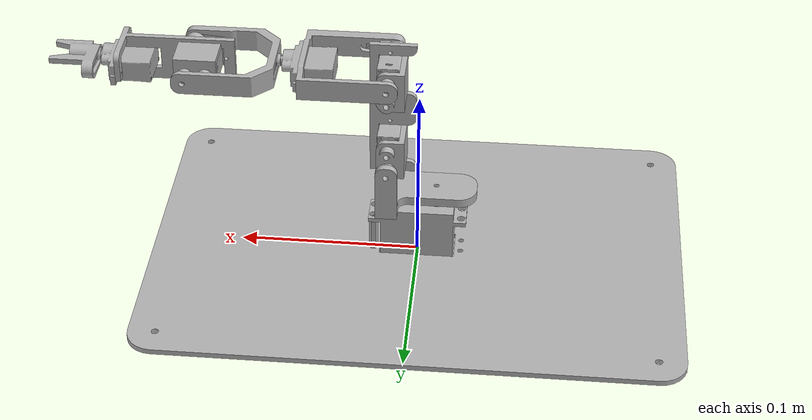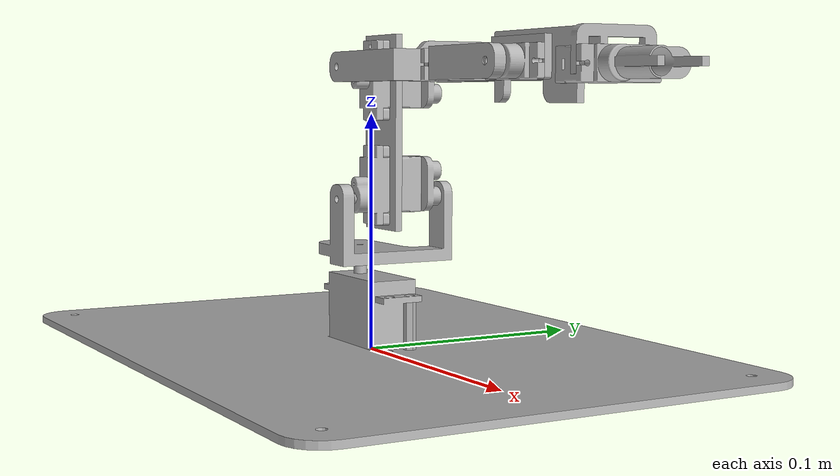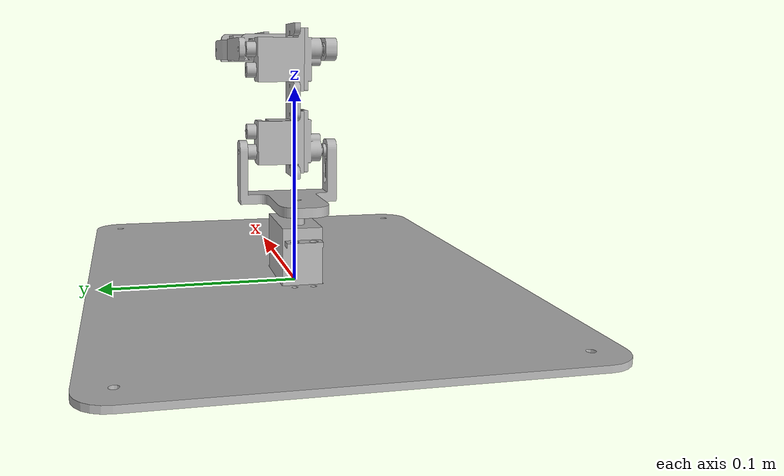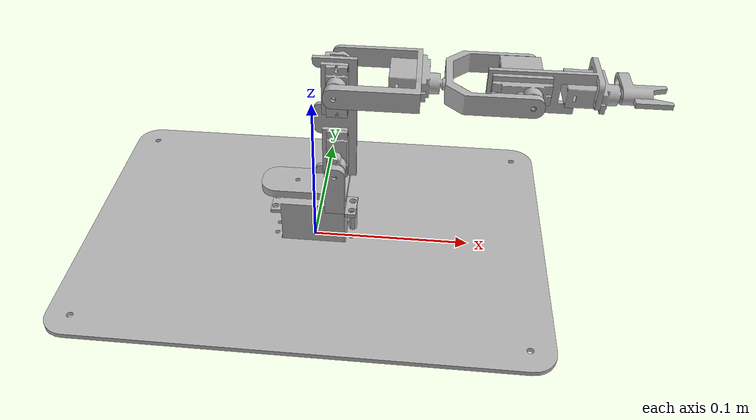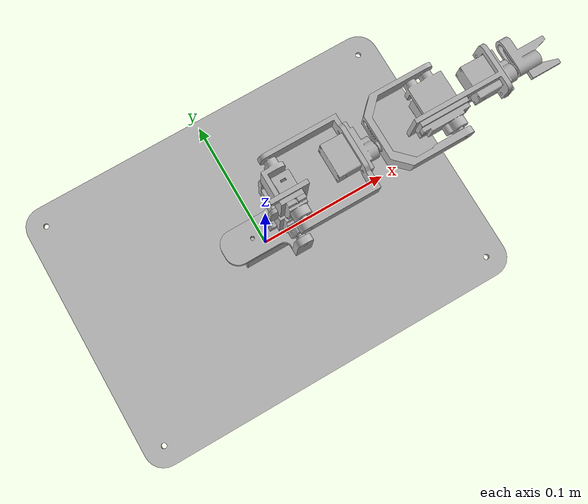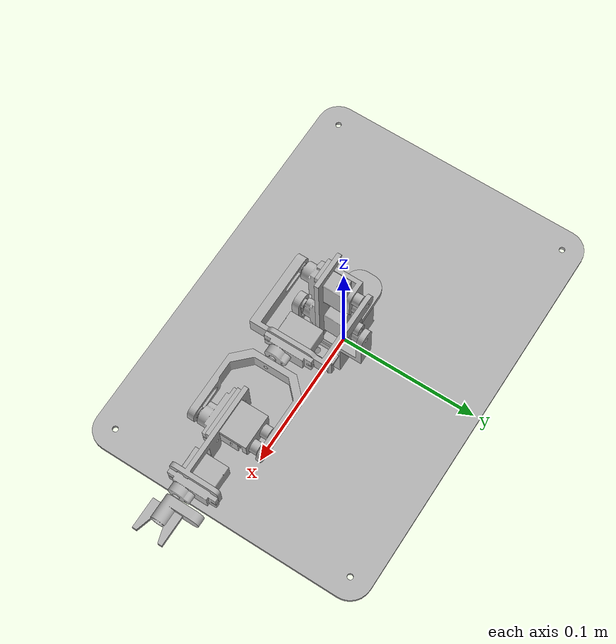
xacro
<?xml version="1.0" ?>
<robot name="sr1_6dof_urdf" xmlns:xacro="http://www.ros.org/wiki/xacro">

<xacro:include filename="$(find sr1_6dof_urdf_description)/urdf/materials.xacro" />
<xacro:include filename="$(find sr1_6dof_urdf_description)/urdf/sr1_6dof_urdf.trans" />
<xacro:include filename="$(find sr1_6dof_urdf_description)/urdf/sr1_6dof_urdf.gazebo" />
<link name="base_link">
  <inertial>
    <origin rpy="0 0 0" xyz="-2.0464670397517553e-17 2.894818425347034e-16 0.0015000000000000002"/>
    <mass value="1.4414312260182711"/>
    <inertia ixx="0.005341" ixy="-0.0" ixz="0.0" iyy="0.010675" iyz="0.0" izz="0.016014"/>
  </inertial>
  <visual>
    <origin rpy="0 0 0" xyz="0 0 0"/>
    <geometry>
      <mesh filename="package://sr1_6dof_urdf_description/meshes/base_link.stl" scale="0.001 0.001 0.001"/>
    </geometry>
    <material name="silver"/>
  </visual>
  <collision>
    <origin rpy="0 0 0" xyz="0 0 0"/>
    <geometry>
      <mesh filename="package://sr1_6dof_urdf_description/meshes/base_link.stl" scale="0.001 0.001 0.001"/>
    </geometry>
  </collision>
</link>

<link name="stand_1">
  <inertial>
    <origin rpy="0 0 0" xyz="2.4494989370182907e-13 2.0816681711721685e-17 0.009999999999999998"/>
    <mass value="0.0015683260779925593"/>
    <inertia ixx="0.0" ixy="-0.0" ixz="0.0" iyy="0.0" iyz="-0.0" izz="0.0"/>
  </inertial>
  <visual>
    <origin rpy="0 0 0" xyz="-0.0245 -0.00475 -0.003"/>
    <geometry>
      <mesh filename="package://sr1_6dof_urdf_description/meshes/stand_1.stl" scale="0.001 0.001 0.001"/>
    </geometry>
    <material name="silver"/>
  </visual>
  <collision>
    <origin rpy="0 0 0" xyz="-0.0245 -0.00475 -0.003"/>
    <geometry>
      <mesh filename="package://sr1_6dof_urdf_description/meshes/stand_1.stl" scale="0.001 0.001 0.001"/>
    </geometry>
  </collision>
</link>

<link name="arm_servo2_1">
  <inertial>
    <origin rpy="0 0 0" xyz="9.270071424129223e-07 0.001813800029939864 -0.0039293389985510935"/>
    <mass value="0.0016195799801192233"/>
    <inertia ixx="0.0" ixy="0.0" ixz="0.0" iyy="0.0" iyz="-0.0" izz="0.0"/>
  </inertial>
  <visual>
    <origin rpy="0 0 0" xyz="-0.015891 0.0227 -0.06585"/>
    <geometry>
      <mesh filename="package://sr1_6dof_urdf_description/meshes/arm_servo2_1.stl" scale="0.001 0.001 0.001"/>
    </geometry>
    <material name="silver"/>
  </visual>
  <collision>
    <origin rpy="0 0 0" xyz="-0.015891 0.0227 -0.06585"/>
    <geometry>
      <mesh filename="package://sr1_6dof_urdf_description/meshes/arm_servo2_1.stl" scale="0.001 0.001 0.001"/>
    </geometry>
  </collision>
</link>

<link name="servo2_1">
  <inertial>
    <origin rpy="0 0 0" xyz="-5.204170427930421e-17 0.001729459381916567 -3.080452559700575e-13"/>
    <mass value="0.00045126850039796834"/>
    <inertia ixx="0.0" ixy="0.0" ixz="-0.0" iyy="0.0" iyz="-0.0" izz="0.0"/>
  </inertial>
  <visual>
    <origin rpy="0 0 0" xyz="-0.015891 0.0202 -0.06585"/>
    <geometry>
      <mesh filename="package://sr1_6dof_urdf_description/meshes/servo2_1.stl" scale="0.001 0.001 0.001"/>
    </geometry>
    <material name="silver"/>
  </visual>
  <collision>
    <origin rpy="0 0 0" xyz="-0.015891 0.0202 -0.06585"/>
    <geometry>
      <mesh filename="package://sr1_6dof_urdf_description/meshes/servo2_1.stl" scale="0.001 0.001 0.001"/>
    </geometry>
  </collision>
</link>

<link name="servosuit2_1">
  <inertial>
    <origin rpy="0 0 0" xyz="0.0024058437872465314 -0.05184820726775113 -0.016040999905009"/>
    <mass value="0.025845994288563736"/>
    <inertia ixx="4e-06" ixy="-0.0" ixz="0.0" iyy="2e-06" iyz="0.0" izz="3e-06"/>
  </inertial>
  <visual>
    <origin rpy="0 0 0" xyz="-0.009441 -0.060555 -0.087116"/>
    <geometry>
      <mesh filename="package://sr1_6dof_urdf_description/meshes/servosuit2_1.stl" scale="0.001 0.001 0.001"/>
    </geometry>
    <material name="silver"/>
  </visual>
  <collision>
    <origin rpy="0 0 0" xyz="-0.009441 -0.060555 -0.087116"/>
    <geometry>
      <mesh filename="package://sr1_6dof_urdf_description/meshes/servosuit2_1.stl" scale="0.001 0.001 0.001"/>
    </geometry>
  </collision>
</link>

<link name="link2_1">
  <inertial>
    <origin rpy="0 0 0" xyz="0.01678195537164606 0.05869999894966742 0.01812500000000135"/>
    <mass value="0.024002279759971108"/>
    <inertia ixx="1.3e-05" ixy="-0.0" ixz="0.0" iyy="1.4e-05" iyz="-0.0" izz="1e-06"/>
  </inertial>
  <visual>
    <origin rpy="0 0 0" xyz="0.0 0.06065 -0.074525"/>
    <geometry>
      <mesh filename="package://sr1_6dof_urdf_description/meshes/link2_1.stl" scale="0.001 0.001 0.001"/>
    </geometry>
    <material name="silver"/>
  </visual>
  <collision>
    <origin rpy="0 0 0" xyz="0.0 0.06065 -0.074525"/>
    <geometry>
      <mesh filename="package://sr1_6dof_urdf_description/meshes/link2_1.stl" scale="0.001 0.001 0.001"/>
    </geometry>
  </collision>
</link>

<link name="link3_1">
  <inertial>
    <origin rpy="0 0 0" xyz="0.025719776113274587 0.01870425498345105 0.00033415614440862607"/>
    <mass value="0.04773704291712355"/>
    <inertia ixx="2.3e-05" ixy="-0.0" ixz="-0.0" iyy="1.3e-05" iyz="-0.0" izz="3.5e-05"/>
  </inertial>
  <visual>
    <origin rpy="0 0 0" xyz="-0.015891 0.0227 -0.1194"/>
    <geometry>
      <mesh filename="package://sr1_6dof_urdf_description/meshes/link3_1.stl" scale="0.001 0.001 0.001"/>
    </geometry>
    <material name="silver"/>
  </visual>
  <collision>
    <origin rpy="0 0 0" xyz="-0.015891 0.0227 -0.1194"/>
    <geometry>
      <mesh filename="package://sr1_6dof_urdf_description/meshes/link3_1.stl" scale="0.001 0.001 0.001"/>
    </geometry>
  </collision>
</link>

<link name="servo4_1">
  <inertial>
    <origin rpy="0 0 0" xyz="0.012020539567750926 0.008499999999691935 -2.7755575615628914e-17"/>
    <mass value="0.00045126850039796834"/>
    <inertia ixx="0.0" ixy="0.0" ixz="-0.0" iyy="0.0" iyz="0.0" izz="0.0"/>
  </inertial>
  <visual>
    <origin rpy="0 0 0" xyz="-0.062891 0.0105 -0.1194"/>
    <geometry>
      <mesh filename="package://sr1_6dof_urdf_description/meshes/servo4_1.stl" scale="0.001 0.001 0.001"/>
    </geometry>
    <material name="silver"/>
  </visual>
  <collision>
    <origin rpy="0 0 0" xyz="-0.062891 0.0105 -0.1194"/>
    <geometry>
      <mesh filename="package://sr1_6dof_urdf_description/meshes/servo4_1.stl" scale="0.001 0.001 0.001"/>
    </geometry>
  </collision>
</link>

<link name="arm_servo4_1">
  <inertial>
    <origin rpy="0 0 0" xyz="0.000686198919727668 0.003929338998551111 9.270071424372084e-07"/>
    <mass value="0.0016195799801192233"/>
    <inertia ixx="0.0" ixy="-0.0" ixz="-0.0" iyy="0.0" iyz="-0.0" izz="0.0"/>
  </inertial>
  <visual>
    <origin rpy="0 0 0" xyz="-0.076641 0.002 -0.1194"/>
    <geometry>
      <mesh filename="package://sr1_6dof_urdf_description/meshes/arm_servo4_1.stl" scale="0.001 0.001 0.001"/>
    </geometry>
    <material name="silver"/>
  </visual>
  <collision>
    <origin rpy="0 0 0" xyz="-0.076641 0.002 -0.1194"/>
    <geometry>
      <mesh filename="package://sr1_6dof_urdf_description/meshes/arm_servo4_1.stl" scale="0.001 0.001 0.001"/>
    </geometry>
  </collision>
</link>

<link name="link4_1">
  <inertial>
    <origin rpy="0 0 0" xyz="0.01595875607907421 0.0029866647100871228 8.172538670803142e-08"/>
    <mass value="0.04499050790995506"/>
    <inertia ixx="1.9e-05" ixy="-0.0" ixz="-0.0" iyy="1.2e-05" iyz="0.0" izz="2.9e-05"/>
  </inertial>
  <visual>
    <origin rpy="0 0 0" xyz="-0.079141 0.002 -0.1194"/>
    <geometry>
      <mesh filename="package://sr1_6dof_urdf_description/meshes/link4_1.stl" scale="0.001 0.001 0.001"/>
    </geometry>
    <material name="silver"/>
  </visual>
  <collision>
    <origin rpy="0 0 0" xyz="-0.079141 0.002 -0.1194"/>
    <geometry>
      <mesh filename="package://sr1_6dof_urdf_description/meshes/link4_1.stl" scale="0.001 0.001 0.001"/>
    </geometry>
  </collision>
</link>

<link name="arm_servo5_1">
  <inertial>
    <origin rpy="0 0 0" xyz="-0.003929340048883706 0.0018138000299398917 -9.270071424372084e-07"/>
    <mass value="0.0016195799801192233"/>
    <inertia ixx="0.0" ixy="-0.0" ixz="-0.0" iyy="0.0" iyz="-0.0" izz="0.0"/>
  </inertial>
  <visual>
    <origin rpy="0 0 0" xyz="-0.123141 0.0227 -0.1194"/>
    <geometry>
      <mesh filename="package://sr1_6dof_urdf_description/meshes/arm_servo5_1.stl" scale="0.001 0.001 0.001"/>
    </geometry>
    <material name="silver"/>
  </visual>
  <collision>
    <origin rpy="0 0 0" xyz="-0.123141 0.0227 -0.1194"/>
    <geometry>
      <mesh filename="package://sr1_6dof_urdf_description/meshes/arm_servo5_1.stl" scale="0.001 0.001 0.001"/>
    </geometry>
  </collision>
</link>

<link name="servo5_1">
  <inertial>
    <origin rpy="0 0 0" xyz="-1.0500244979061435e-09 0.0017294593819165496 4.163336342344337e-17"/>
    <mass value="0.00045126850039796834"/>
    <inertia ixx="0.0" ixy="0.0" ixz="-0.0" iyy="0.0" iyz="0.0" izz="0.0"/>
  </inertial>
  <visual>
    <origin rpy="0 0 0" xyz="-0.123141 0.0202 -0.1194"/>
    <geometry>
      <mesh filename="package://sr1_6dof_urdf_description/meshes/servo5_1.stl" scale="0.001 0.001 0.001"/>
    </geometry>
    <material name="silver"/>
  </visual>
  <collision>
    <origin rpy="0 0 0" xyz="-0.123141 0.0202 -0.1194"/>
    <geometry>
      <mesh filename="package://sr1_6dof_urdf_description/meshes/servo5_1.stl" scale="0.001 0.001 0.001"/>
    </geometry>
  </collision>
</link>

<link name="servosuit5_1">
  <inertial>
    <origin rpy="0 0 0" xyz="-0.013875000955341554 0.01515679273224893 0.004044156212753419"/>
    <mass value="0.025845994288563736"/>
    <inertia ixx="3e-06" ixy="0.0" ixz="-0.0" iyy="2e-06" iyz="0.0" izz="4e-06"/>
  </inertial>
  <visual>
    <origin rpy="0 0 0" xyz="-0.131641 0.00645 -0.1194"/>
    <geometry>
      <mesh filename="package://sr1_6dof_urdf_description/meshes/servosuit5_1.stl" scale="0.001 0.001 0.001"/>
    </geometry>
    <material name="silver"/>
  </visual>
  <collision>
    <origin rpy="0 0 0" xyz="-0.131641 0.00645 -0.1194"/>
    <geometry>
      <mesh filename="package://sr1_6dof_urdf_description/meshes/servosuit5_1.stl" scale="0.001 0.001 0.001"/>
    </geometry>
  </collision>
</link>

<link name="link5_1">
  <inertial>
    <origin rpy="0 0 0" xyz="0.004152342065132875 0.002853406666587355 0.002207808336847125"/>
    <mass value="0.021752655590967795"/>
    <inertia ixx="2e-06" ixy="-1e-06" ixz="-1e-06" iyy="1e-05" iyz="-0.0" izz="9e-06"/>
  </inertial>
  <visual>
    <origin rpy="0 0 0" xyz="-0.131641 0.00345 -0.1194"/>
    <geometry>
      <mesh filename="package://sr1_6dof_urdf_description/meshes/link5_1.stl" scale="0.001 0.001 0.001"/>
    </geometry>
    <material name="silver"/>
  </visual>
  <collision>
    <origin rpy="0 0 0" xyz="-0.131641 0.00345 -0.1194"/>
    <geometry>
      <mesh filename="package://sr1_6dof_urdf_description/meshes/link5_1.stl" scale="0.001 0.001 0.001"/>
    </geometry>
  </collision>
</link>

<link name="servo6_1">
  <inertial>
    <origin rpy="0 0 0" xyz="0.012020538517418272 0.008499998949359428 -8.326672684688674e-17"/>
    <mass value="0.00045126850039796834"/>
    <inertia ixx="0.0" ixy="0.0" ixz="0.0" iyy="0.0" iyz="0.0" izz="0.0"/>
  </inertial>
  <visual>
    <origin rpy="0 0 0" xyz="-0.160241 0.01045 -0.11785"/>
    <geometry>
      <mesh filename="package://sr1_6dof_urdf_description/meshes/servo6_1.stl" scale="0.001 0.001 0.001"/>
    </geometry>
    <material name="silver"/>
  </visual>
  <collision>
    <origin rpy="0 0 0" xyz="-0.160241 0.01045 -0.11785"/>
    <geometry>
      <mesh filename="package://sr1_6dof_urdf_description/meshes/servo6_1.stl" scale="0.001 0.001 0.001"/>
    </geometry>
  </collision>
</link>

<link name="arm_servo6_1">
  <inertial>
    <origin rpy="0 0 0" xyz="0.000686197869395111 0.003929337948218609 9.270071423816972e-07"/>
    <mass value="0.0016195799801192233"/>
    <inertia ixx="0.0" ixy="-0.0" ixz="-0.0" iyy="0.0" iyz="-0.0" izz="0.0"/>
  </inertial>
  <visual>
    <origin rpy="0 0 0" xyz="-0.173991 0.00195 -0.11785"/>
    <geometry>
      <mesh filename="package://sr1_6dof_urdf_description/meshes/arm_servo6_1.stl" scale="0.001 0.001 0.001"/>
    </geometry>
    <material name="silver"/>
  </visual>
  <collision>
    <origin rpy="0 0 0" xyz="-0.173991 0.00195 -0.11785"/>
    <geometry>
      <mesh filename="package://sr1_6dof_urdf_description/meshes/arm_servo6_1.stl" scale="0.001 0.001 0.001"/>
    </geometry>
  </collision>
</link>

<link name="gripper_1">
  <inertial>
    <origin rpy="0 0 0" xyz="0.004282929436811772 0.004828839864712714 1.7943979635504093e-14"/>
    <mass value="0.013285998768081434"/>
    <inertia ixx="1e-06" ixy="0.0" ixz="0.0" iyy="1e-06" iyz="0.0" izz="1e-06"/>
  </inertial>
  <visual>
    <origin rpy="0 0 0" xyz="-0.176491 0.00195 -0.11785"/>
    <geometry>
      <mesh filename="package://sr1_6dof_urdf_description/meshes/gripper_1.stl" scale="0.001 0.001 0.001"/>
    </geometry>
    <material name="silver"/>
  </visual>
  <collision>
    <origin rpy="0 0 0" xyz="-0.176491 0.00195 -0.11785"/>
    <geometry>
      <mesh filename="package://sr1_6dof_urdf_description/meshes/gripper_1.stl" scale="0.001 0.001 0.001"/>
    </geometry>
  </collision>
</link>

<link name="servo1_1">
  <inertial>
    <origin rpy="0 0 0" xyz="-0.024570430095383514 -0.004750000000003402 -0.00893218633717456"/>
    <mass value="0.23103338687475486"/>
    <inertia ixx="3.2e-05" ixy="-0.0" ixz="0.0" iyy="5.8e-05" iyz="0.0" izz="4.1e-05"/>
  </inertial>
  <visual>
    <origin rpy="0 0 0" xyz="-0.0245 -0.00475 -0.023"/>
    <geometry>
      <mesh filename="package://sr1_6dof_urdf_description/meshes/servo1_1.stl" scale="0.001 0.001 0.001"/>
    </geometry>
    <material name="silver"/>
  </visual>
  <collision>
    <origin rpy="0 0 0" xyz="-0.0245 -0.00475 -0.023"/>
    <geometry>
      <mesh filename="package://sr1_6dof_urdf_description/meshes/servo1_1.stl" scale="0.001 0.001 0.001"/>
    </geometry>
  </collision>
</link>

<link name="link1_1">
  <inertial>
    <origin rpy="0 0 0" xyz="0.014528609970863545 0.0006585280615051328 0.004057411623847554"/>
    <mass value="0.07794699374847427"/>
    <inertia ixx="2.3e-05" ixy="-1e-06" ixz="-3e-06" iyy="2.4e-05" iyz="-0.0" izz="3.7e-05"/>
  </inertial>
  <visual>
    <origin rpy="0 0 0" xyz="0.010109 -0.0 -0.04135"/>
    <geometry>
      <mesh filename="package://sr1_6dof_urdf_description/meshes/link1_1.stl" scale="0.001 0.001 0.001"/>
    </geometry>
    <material name="silver"/>
  </visual>
  <collision>
    <origin rpy="0 0 0" xyz="0.010109 -0.0 -0.04135"/>
    <geometry>
      <mesh filename="package://sr1_6dof_urdf_description/meshes/link1_1.stl" scale="0.001 0.001 0.001"/>
    </geometry>
  </collision>
</link>

<link name="servosuit3_1">
  <inertial>
    <origin rpy="0 0 0" xyz="-0.00404415621275348 0.012156792732248903 -0.013874999905009108"/>
    <mass value="0.025845994288563736"/>
    <inertia ixx="4e-06" ixy="-0.0" ixz="0.0" iyy="2e-06" iyz="0.0" izz="3e-06"/>
  </inertial>
  <visual>
    <origin rpy="0 0 0" xyz="-0.015891 0.00345 -0.1279"/>
    <geometry>
      <mesh filename="package://sr1_6dof_urdf_description/meshes/servosuit3_1.stl" scale="0.001 0.001 0.001"/>
    </geometry>
    <material name="silver"/>
  </visual>
  <collision>
    <origin rpy="0 0 0" xyz="-0.015891 0.00345 -0.1279"/>
    <geometry>
      <mesh filename="package://sr1_6dof_urdf_description/meshes/servosuit3_1.stl" scale="0.001 0.001 0.001"/>
    </geometry>
  </collision>
</link>

<link name="servo3_1">
  <inertial>
    <origin rpy="0 0 0" xyz="1.3877787807814457e-17 -0.012020540618083438 -0.008499999999691962"/>
    <mass value="0.00045126850039796834"/>
    <inertia ixx="0.0" ixy="0.0" ixz="0.0" iyy="0.0" iyz="0.0" izz="0.0"/>
  </inertial>
  <visual>
    <origin rpy="0 0 0" xyz="-0.015891 0.00645 -0.1279"/>
    <geometry>
      <mesh filename="package://sr1_6dof_urdf_description/meshes/servo3_1.stl" scale="0.001 0.001 0.001"/>
    </geometry>
    <material name="silver"/>
  </visual>
  <collision>
    <origin rpy="0 0 0" xyz="-0.015891 0.00645 -0.1279"/>
    <geometry>
      <mesh filename="package://sr1_6dof_urdf_description/meshes/servo3_1.stl" scale="0.001 0.001 0.001"/>
    </geometry>
  </collision>
</link>

<link name="arm_servo1_1">
  <inertial>
    <origin rpy="0 0 0" xyz="2.641145482014731e-06 1.0800620513556616e-06 0.000755461230794334"/>
    <mass value="0.0059977269324000045"/>
    <inertia ixx="0.0" ixy="0.0" ixz="-0.0" iyy="0.0" iyz="-0.0" izz="1e-06"/>
  </inertial>
  <visual>
    <origin rpy="0 0 0" xyz="0.010109 -0.0 -0.039"/>
    <geometry>
      <mesh filename="package://sr1_6dof_urdf_description/meshes/arm_servo1_1.stl" scale="0.001 0.001 0.001"/>
    </geometry>
    <material name="silver"/>
  </visual>
  <collision>
    <origin rpy="0 0 0" xyz="0.010109 -0.0 -0.039"/>
    <geometry>
      <mesh filename="package://sr1_6dof_urdf_description/meshes/arm_servo1_1.stl" scale="0.001 0.001 0.001"/>
    </geometry>
  </collision>
</link>

<link name="arm_servo3_1">
  <inertial>
    <origin rpy="0 0 0" xyz="0.0039293389985511525 -0.0006861999700601661 9.270071424510862e-07"/>
    <mass value="0.0016195799801192233"/>
    <inertia ixx="0.0" ixy="0.0" ixz="-0.0" iyy="0.0" iyz="0.0" izz="0.0"/>
  </inertial>
  <visual>
    <origin rpy="0 0 0" xyz="-0.015891 0.0202 -0.1194"/>
    <geometry>
      <mesh filename="package://sr1_6dof_urdf_description/meshes/arm_servo3_1.stl" scale="0.001 0.001 0.001"/>
    </geometry>
    <material name="silver"/>
  </visual>
  <collision>
    <origin rpy="0 0 0" xyz="-0.015891 0.0202 -0.1194"/>
    <geometry>
      <mesh filename="package://sr1_6dof_urdf_description/meshes/arm_servo3_1.stl" scale="0.001 0.001 0.001"/>
    </geometry>
  </collision>
</link>

<joint name="Rigid1" type="fixed">
  <origin rpy="0 0 0" xyz="0.0245 0.00475 0.003"/>
  <parent link="base_link"/>
  <child link="stand_1"/>
</joint>

<joint name="Rigid9" type="fixed">
  <origin rpy="0 0 0" xyz="0.026 -0.0227 0.0245"/>
  <parent link="link1_1"/>
  <child link="arm_servo2_1"/>
</joint>

<joint name="joint2" type="revolute">
  <origin rpy="0 0 0" xyz="0.0 0.0025 0.0"/>
  <parent link="arm_servo2_1"/>
  <child link="servo2_1"/>
  <axis xyz="-0.0 1.0 -0.0"/>
  <limit effort="100" lower="-1.570796" upper="1.570796" velocity="100"/>
</joint>

<joint name="Rigid11" type="fixed">
  <origin rpy="0 0 0" xyz="-0.00645 0.080755 0.021266"/>
  <parent link="servo2_1"/>
  <child link="servosuit2_1"/>
</joint>

<joint name="Rigid12" type="fixed">
  <origin rpy="0 0 0" xyz="-0.009441 -0.121205 -0.012591"/>
  <parent link="servosuit2_1"/>
  <child link="link2_1"/>
</joint>

<joint name="Rigid16" type="fixed">
  <origin rpy="0 0 0" xyz="0.0 -0.0025 0.0"/>
  <parent link="arm_servo3_1"/>
  <child link="link3_1"/>
</joint>

<joint name="Rigid17" type="fixed">
  <origin rpy="0 0 0" xyz="0.047 0.0122 0.0"/>
  <parent link="link3_1"/>
  <child link="servo4_1"/>
</joint>

<joint name="joint4" type="revolute">
  <origin rpy="0 0 0" xyz="0.01375 0.0085 0.0"/>
  <parent link="servo4_1"/>
  <child link="arm_servo4_1"/>
  <axis xyz="1.0 -0.0 0.0"/>
  <limit effort="100" lower="-3.141593" upper="0.0" velocity="100"/>
</joint>

<joint name="Rigid19" type="fixed">
  <origin rpy="0 0 0" xyz="0.0025 0.0 0.0"/>
  <parent link="arm_servo4_1"/>
  <child link="link4_1"/>
</joint>

<joint name="Rigid20" type="fixed">
  <origin rpy="0 0 0" xyz="0.044 -0.0207 0.0"/>
  <parent link="link4_1"/>
  <child link="arm_servo5_1"/>
</joint>

<joint name="joint5" type="revolute">
  <origin rpy="0 0 0" xyz="0.0 0.0025 0.0"/>
  <parent link="arm_servo5_1"/>
  <child link="servo5_1"/>
  <axis xyz="0.0 1.0 -0.0"/>
  <limit effort="100" lower="-1.570796" upper="1.570796" velocity="100"/>
</joint>

<joint name="Rigid22" type="fixed">
  <origin rpy="0 0 0" xyz="0.0085 0.01375 0.0"/>
  <parent link="servo5_1"/>
  <child link="servosuit5_1"/>
</joint>

<joint name="Rigid23" type="fixed">
  <origin rpy="0 0 0" xyz="0.0 0.003 0.0"/>
  <parent link="servosuit5_1"/>
  <child link="link5_1"/>
</joint>

<joint name="Rigid24" type="fixed">
  <origin rpy="0 0 0" xyz="0.0286 -0.007 -0.00155"/>
  <parent link="link5_1"/>
  <child link="servo6_1"/>
</joint>

<joint name="joint6" type="revolute">
  <origin rpy="0 0 0" xyz="0.01375 0.0085 0.0"/>
  <parent link="servo6_1"/>
  <child link="arm_servo6_1"/>
  <axis xyz="1.0 -0.0 0.0"/>
  <limit effort="100" lower="-1.570796" upper="1.570796" velocity="100"/>
</joint>

<joint name="Rigid26" type="fixed">
  <origin rpy="0 0 0" xyz="0.0025 0.0 0.0"/>
  <parent link="arm_servo6_1"/>
  <child link="gripper_1"/>
</joint>

<joint name="Rigid27" type="fixed">
  <origin rpy="0 0 0" xyz="0.0 0.0 0.02"/>
  <parent link="stand_1"/>
  <child link="servo1_1"/>
</joint>

<joint name="Rigid29" type="fixed">
  <origin rpy="0 0 0" xyz="0.0 0.0 0.00235"/>
  <parent link="arm_servo1_1"/>
  <child link="link1_1"/>
</joint>

<joint name="Rigid30" type="fixed">
  <origin rpy="0 0 0" xyz="0.015891 0.0572 0.053375"/>
  <parent link="link2_1"/>
  <child link="servosuit3_1"/>
</joint>

<joint name="Rigid31" type="fixed">
  <origin rpy="0 0 0" xyz="0.0 -0.003 0.0"/>
  <parent link="servosuit3_1"/>
  <child link="servo3_1"/>
</joint>

<joint name="joint1" type="revolute">
  <origin rpy="0 0 0" xyz="-0.034609 -0.00475 0.016"/>
  <parent link="servo1_1"/>
  <child link="arm_servo1_1"/>
  <axis xyz="0.0 0.0 1.0"/>
  <limit effort="100" lower="-1.570796" upper="1.570796" velocity="100"/>
</joint>

<joint name="Rev33" type="revolute">
  <origin rpy="0 0 0" xyz="0.0 -0.01375 -0.0085"/>
  <parent link="servo3_1"/>
  <child link="arm_servo3_1"/>
  <axis xyz="0.0 -1.0 0.0"/>
  <limit effort="100" lower="-1.570796" upper="1.570796" velocity="100"/>
</joint>

</robot>

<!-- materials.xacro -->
<robot name="sr1_6dof_urdf" xmlns:xacro="http://www.ros.org/wiki/xacro" >

<material name="silver">
  <color rgba="0.700 0.700 0.700 1.000"/>
</material>

</robot>

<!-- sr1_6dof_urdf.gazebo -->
<robot name="sr1_6dof_urdf" xmlns:xacro="http://www.ros.org/wiki/xacro" >

<xacro:property name="body_color" value="Gazebo/Silver" />

<gazebo>
  <plugin filename="libgazebo_ros_control.so" name="control"/>
</gazebo>
<gazebo reference="base_link">
  <material>${body_color}</material>
  <mu1>0.2</mu1>
  <mu2>0.2</mu2>
  <selfCollide>true</selfCollide>
  <gravity>true</gravity>
</gazebo>

<gazebo reference="stand_1">
  <material>${body_color}</material>
  <mu1>0.2</mu1>
  <mu2>0.2</mu2>
  <selfCollide>true</selfCollide>
</gazebo>

<gazebo reference="arm_servo2_1">
  <material>${body_color}</material>
  <mu1>0.2</mu1>
  <mu2>0.2</mu2>
  <selfCollide>true</selfCollide>
</gazebo>

<gazebo reference="servo2_1">
  <material>${body_color}</material>
  <mu1>0.2</mu1>
  <mu2>0.2</mu2>
  <selfCollide>true</selfCollide>
</gazebo>

<gazebo reference="servosuit2_1">
  <material>${body_color}</material>
  <mu1>0.2</mu1>
  <mu2>0.2</mu2>
  <selfCollide>true</selfCollide>
</gazebo>

<gazebo reference="link2_1">
  <material>${body_color}</material>
  <mu1>0.2</mu1>
  <mu2>0.2</mu2>
  <selfCollide>true</selfCollide>
</gazebo>

<gazebo reference="link3_1">
  <material>${body_color}</material>
  <mu1>0.2</mu1>
  <mu2>0.2</mu2>
  <selfCollide>true</selfCollide>
</gazebo>

<gazebo reference="servo4_1">
  <material>${body_color}</material>
  <mu1>0.2</mu1>
  <mu2>0.2</mu2>
  <selfCollide>true</selfCollide>
</gazebo>

<gazebo reference="arm_servo4_1">
  <material>${body_color}</material>
  <mu1>0.2</mu1>
  <mu2>0.2</mu2>
  <selfCollide>true</selfCollide>
</gazebo>

<gazebo reference="link4_1">
  <material>${body_color}</material>
  <mu1>0.2</mu1>
  <mu2>0.2</mu2>
  <selfCollide>true</selfCollide>
</gazebo>

<gazebo reference="arm_servo5_1">
  <material>${body_color}</material>
  <mu1>0.2</mu1>
  <mu2>0.2</mu2>
  <selfCollide>true</selfCollide>
</gazebo>

<gazebo reference="servo5_1">
  <material>${body_color}</material>
  <mu1>0.2</mu1>
  <mu2>0.2</mu2>
  <selfCollide>true</selfCollide>
</gazebo>

<gazebo reference="servosuit5_1">
  <material>${body_color}</material>
  <mu1>0.2</mu1>
  <mu2>0.2</mu2>
  <selfCollide>true</selfCollide>
</gazebo>

<gazebo reference="link5_1">
  <material>${body_color}</material>
  <mu1>0.2</mu1>
  <mu2>0.2</mu2>
  <selfCollide>true</selfCollide>
</gazebo>

<gazebo reference="servo6_1">
  <material>${body_color}</material>
  <mu1>0.2</mu1>
  <mu2>0.2</mu2>
  <selfCollide>true</selfCollide>
</gazebo>

<gazebo reference="arm_servo6_1">
  <material>${body_color}</material>
  <mu1>0.2</mu1>
  <mu2>0.2</mu2>
  <selfCollide>true</selfCollide>
</gazebo>

<gazebo reference="gripper_1">
  <material>${body_color}</material>
  <mu1>0.2</mu1>
  <mu2>0.2</mu2>
  <selfCollide>true</selfCollide>
</gazebo>

<gazebo reference="servo1_1">
  <material>${body_color}</material>
  <mu1>0.2</mu1>
  <mu2>0.2</mu2>
  <selfCollide>true</selfCollide>
</gazebo>

<gazebo reference="link1_1">
  <material>${body_color}</material>
  <mu1>0.2</mu1>
  <mu2>0.2</mu2>
  <selfCollide>true</selfCollide>
</gazebo>

<gazebo reference="servosuit3_1">
  <material>${body_color}</material>
  <mu1>0.2</mu1>
  <mu2>0.2</mu2>
  <selfCollide>true</selfCollide>
</gazebo>

<gazebo reference="servo3_1">
  <material>${body_color}</material>
  <mu1>0.2</mu1>
  <mu2>0.2</mu2>
  <selfCollide>true</selfCollide>
</gazebo>

<gazebo reference="arm_servo1_1">
  <material>${body_color}</material>
  <mu1>0.2</mu1>
  <mu2>0.2</mu2>
  <selfCollide>true</selfCollide>
</gazebo>

<gazebo reference="arm_servo3_1">
  <material>${body_color}</material>
  <mu1>0.2</mu1>
  <mu2>0.2</mu2>
  <selfCollide>true</selfCollide>
</gazebo>

</robot>
